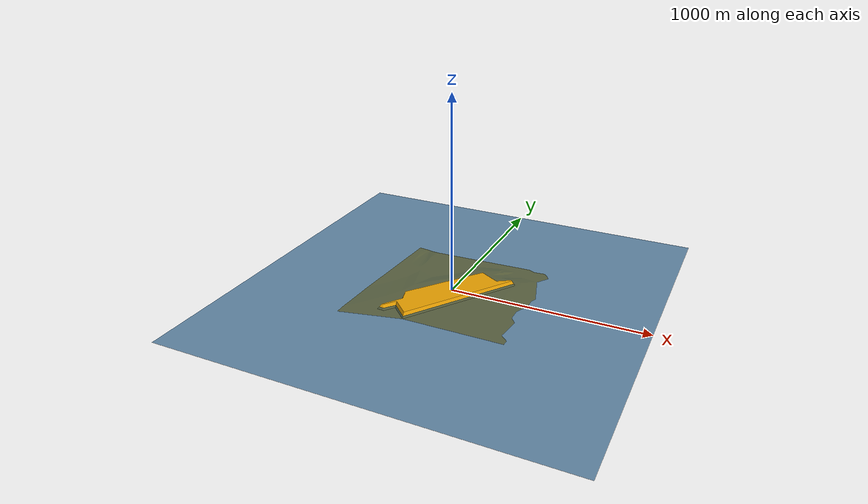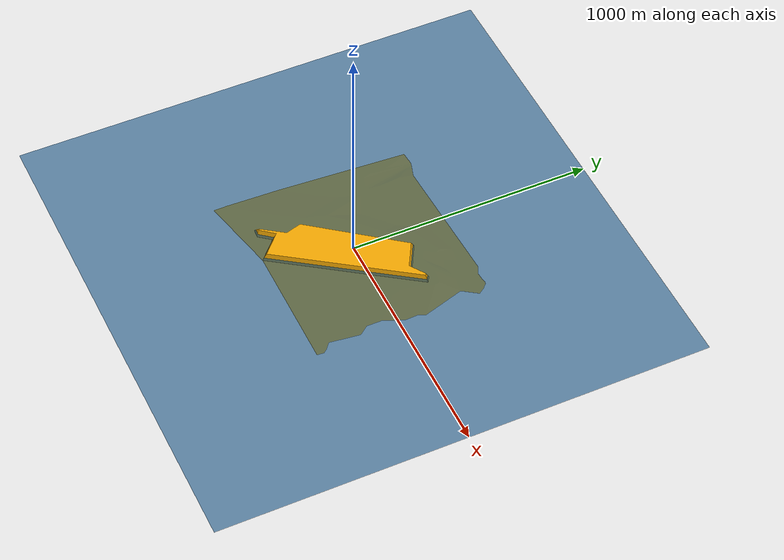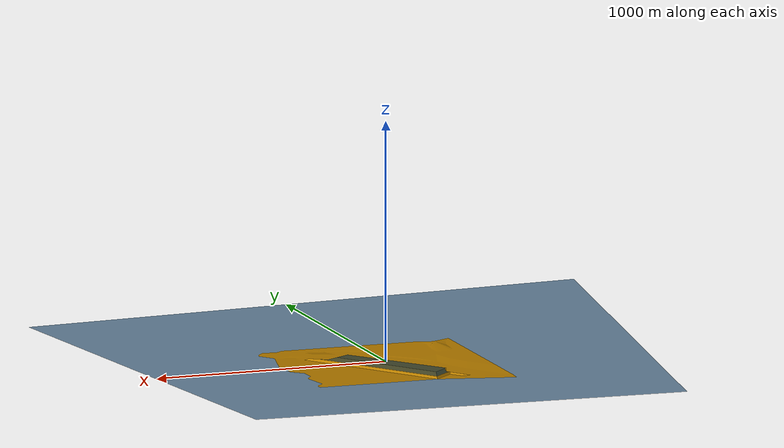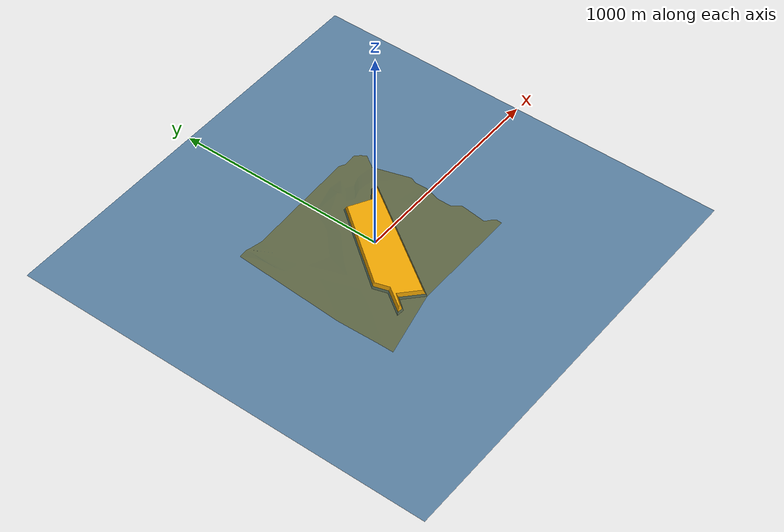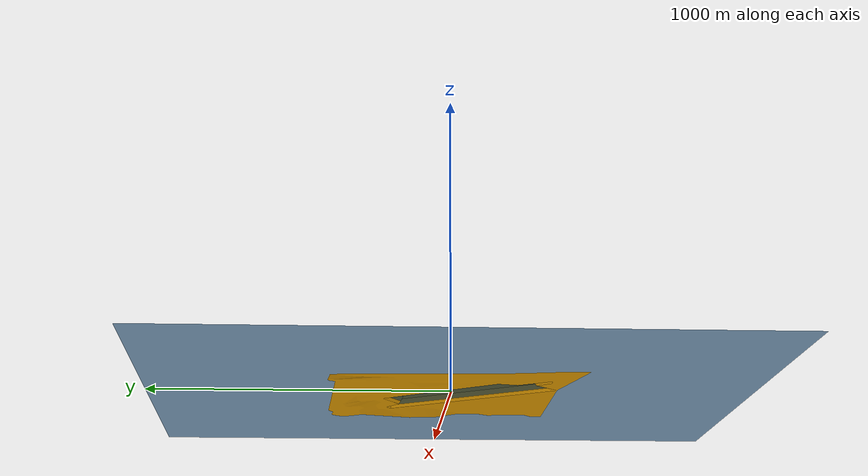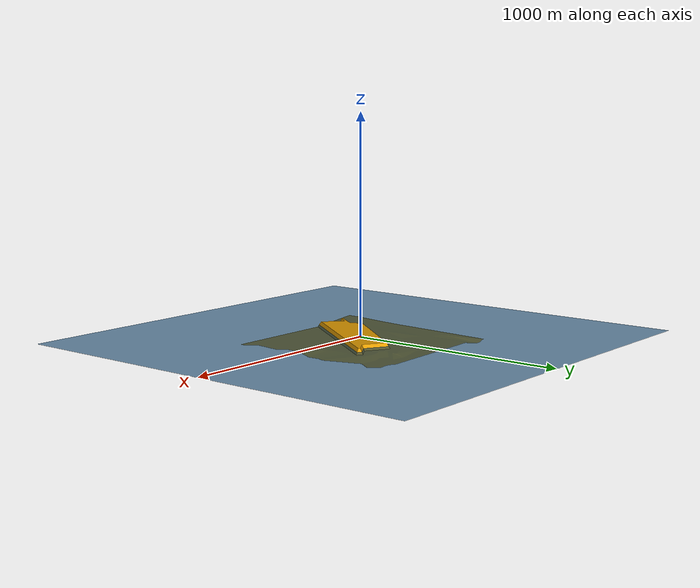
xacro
<?xml version="1.0"?>
<robot name="world" xmlns:xacro="http://www.ros.org/wiki/xacro">

  <material name="water">
    <color rgba="0.02 0.26 0.46 0.6"/>
  </material>

  <link name="world">
    <visual>
    <geometry>
        <mesh filename="file://$(find ecn_2023)/urdf/world/MangaliaTerrain.dae"  scale="1.0 1.0 2.0"/>
      </geometry>
      <origin xyz="0 0 -5"/>
    </visual>
  </link>

  <link name="surface">
    <visual>
    <geometry>
      <box size="2000 2000 0.1"/>
      </geometry>
      <material name="water"/>
    </visual>
  </link>

  <joint name="surface" type="fixed">
    <parent link="world"/>
    <child link="surface"/>
  </joint>

</robot>
